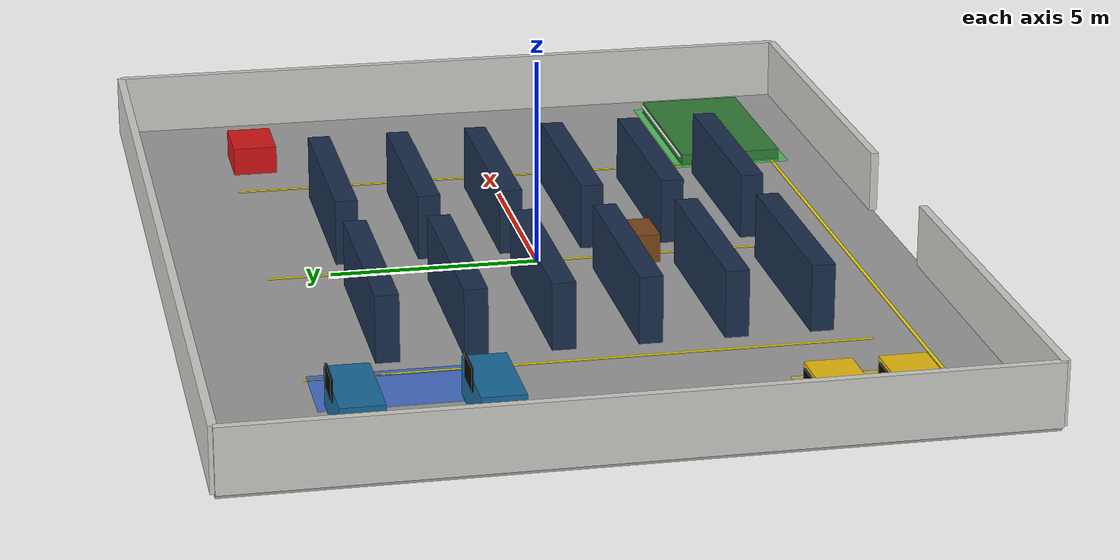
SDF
<?xml version="1.0" ?>
<sdf version="1.9">
  <world name="tugbot_style_ai_warehouse">

    <!-- Gazebo Sim systems -->
    <plugin filename="gz-sim-physics-system" name="gz::sim::systems::Physics"/>
    <plugin filename="gz-sim-user-commands-system" name="gz::sim::systems::UserCommands"/>
    <plugin filename="gz-sim-scene-broadcaster-system" name="gz::sim::systems::SceneBroadcaster"/>
    <plugin filename="gz-sim-sensors-system" name="gz::sim::systems::Sensors">
      <render_engine>ogre2</render_engine>
    </plugin>

    <!-- Web visualization websocket server for GzWeb / Gazebo web visualization -->
    <plugin filename="gz-sim-websocket-server-system" name="gz::sim::systems::WebsocketServer">
      <port>9002</port>
      <publication_hz>30</publication_hz>
      <max_connections>-1</max_connections>
    </plugin>

    <gravity>0 0 -9.81</gravity>
    <magnetic_field>6.0e-6 2.3e-5 -4.2e-5</magnetic_field>
    <atmosphere type="adiabatic"/>

    <scene>
      <ambient>0.6 0.6 0.6 1</ambient>
      <background>0.78 0.82 0.86 1</background>
      <shadows>true</shadows>
      <grid>true</grid>
    </scene>

    <light name="warehouse_area_light_1" type="directional">
      <pose>-8 -8 10 0 0.7 0.8</pose>
      <diffuse>0.9 0.9 0.9 1</diffuse>
      <specular>0.2 0.2 0.2 1</specular>
      <direction>0.5 0.5 -1</direction>
    </light>

    <!-- FLOOR -->
    <model name="warehouse_floor">
      <static>true</static>
      <pose>0 0 -0.05 0 0 0</pose>
      <link name="floor_link">
        <collision name="collision">
          <geometry><box><size>24 18 0.1</size></box></geometry>
        </collision>
        <visual name="visual">
          <geometry><box><size>24 18 0.1</size></box></geometry>
          <material>
            <ambient>0.55 0.55 0.55 1</ambient>
            <diffuse>0.62 0.62 0.62 1</diffuse>
          </material>
        </visual>
      </link>
    </model>

    <!-- OUTER WALLS -->
    <model name="outer_walls">
      <static>true</static>
      <link name="walls">
        <!-- north wall -->
        <collision name="north_collision"><pose>0 9 0.75 0 0 0</pose><geometry><box><size>24 0.2 1.5</size></box></geometry></collision>
        <visual name="north_visual"><pose>0 9 0.75 0 0 0</pose><geometry><box><size>24 0.2 1.5</size></box></geometry><material><diffuse>0.82 0.82 0.80 1</diffuse></material></visual>
        <!-- south wall with entrance gap simulated by 2 segments -->
        <collision name="south_left_collision"><pose>-7  -9 0.75 0 0 0</pose><geometry><box><size>10 0.2 1.5</size></box></geometry></collision>
        <visual name="south_left_visual"><pose>-7 -9 0.75 0 0 0</pose><geometry><box><size>10 0.2 1.5</size></box></geometry><material><diffuse>0.82 0.82 0.80 1</diffuse></material></visual>
        <collision name="south_right_collision"><pose>7 -9 0.75 0 0 0</pose><geometry><box><size>10 0.2 1.5</size></box></geometry></collision>
        <visual name="south_right_visual"><pose>7 -9 0.75 0 0 0</pose><geometry><box><size>10 0.2 1.5</size></box></geometry><material><diffuse>0.82 0.82 0.80 1</diffuse></material></visual>
        <!-- west/east walls -->
        <collision name="west_collision"><pose>-12 0 0.75 0 0 0</pose><geometry><box><size>0.2 18 1.5</size></box></geometry></collision>
        <visual name="west_visual"><pose>-12 0 0.75 0 0 0</pose><geometry><box><size>0.2 18 1.5</size></box></geometry><material><diffuse>0.82 0.82 0.80 1</diffuse></material></visual>
        <collision name="east_collision"><pose>12 0 0.75 0 0 0</pose><geometry><box><size>0.2 18 1.5</size></box></geometry></collision>
        <visual name="east_visual"><pose>12 0 0.75 0 0 0</pose><geometry><box><size>0.2 18 1.5</size></box></geometry><material><diffuse>0.82 0.82 0.80 1</diffuse></material></visual>
      </link>
    </model>

    <!-- STORAGE SHELVES: narrow aisles for smart routing/congestion -->

    <model name="storage_shelf_A1">
      <static>true</static>
      <pose>-3.2 -5.5 0.80 0 0 0</pose>
      <link name="link">
        <collision name="collision"><geometry><box><size>5.0 0.55 1.6</size></box></geometry></collision>
        <visual name="rack_frame"><geometry><box><size>5.0 0.55 1.6</size></box></geometry><material><diffuse>0.10 0.18 0.30 1</diffuse></material></visual>
        <visual name="front_label"><pose>0 -0.29000000000000004 0.15 0 0 0</pose><geometry><box><size>4.6000000000000005 0.03 0.18</size></box></geometry><material><diffuse>0.95 0.70 0.18 1</diffuse></material></visual>
        <visual name="top_box_1"><pose>-1.4 0 0.55 0 0 0</pose><geometry><box><size>0.65 0.45 0.45</size></box></geometry><material><diffuse>0.55 0.32 0.16 1</diffuse></material></visual>
        <visual name="top_box_2"><pose>0.2 0 0.15 0 0 0</pose><geometry><box><size>0.8 0.45 0.35</size></box></geometry><material><diffuse>0.70 0.45 0.22 1</diffuse></material></visual>
        <visual name="top_box_3"><pose>1.6 0 -0.35 0 0 0</pose><geometry><box><size>0.75 0.45 0.4</size></box></geometry><material><diffuse>0.48 0.28 0.12 1</diffuse></material></visual>
      </link>
    </model>

    <model name="storage_shelf_B1">
      <static>true</static>
      <pose>3.2 -5.5 0.80 0 0 0</pose>
      <link name="link">
        <collision name="collision"><geometry><box><size>5.0 0.55 1.6</size></box></geometry></collision>
        <visual name="rack_frame"><geometry><box><size>5.0 0.55 1.6</size></box></geometry><material><diffuse>0.10 0.18 0.30 1</diffuse></material></visual>
        <visual name="front_label"><pose>0 -0.29000000000000004 0.15 0 0 0</pose><geometry><box><size>4.6000000000000005 0.03 0.18</size></box></geometry><material><diffuse>0.95 0.70 0.18 1</diffuse></material></visual>
        <visual name="top_box_1"><pose>-1.4 0 0.55 0 0 0</pose><geometry><box><size>0.65 0.45 0.45</size></box></geometry><material><diffuse>0.55 0.32 0.16 1</diffuse></material></visual>
        <visual name="top_box_2"><pose>0.2 0 0.15 0 0 0</pose><geometry><box><size>0.8 0.45 0.35</size></box></geometry><material><diffuse>0.70 0.45 0.22 1</diffuse></material></visual>
        <visual name="top_box_3"><pose>1.6 0 -0.35 0 0 0</pose><geometry><box><size>0.75 0.45 0.4</size></box></geometry><material><diffuse>0.48 0.28 0.12 1</diffuse></material></visual>
      </link>
    </model>

    <model name="storage_shelf_A2">
      <static>true</static>
      <pose>-3.2 -3.5 0.80 0 0 0</pose>
      <link name="link">
        <collision name="collision"><geometry><box><size>5.0 0.55 1.6</size></box></geometry></collision>
        <visual name="rack_frame"><geometry><box><size>5.0 0.55 1.6</size></box></geometry><material><diffuse>0.10 0.18 0.30 1</diffuse></material></visual>
        <visual name="front_label"><pose>0 -0.29000000000000004 0.15 0 0 0</pose><geometry><box><size>4.6000000000000005 0.03 0.18</size></box></geometry><material><diffuse>0.95 0.70 0.18 1</diffuse></material></visual>
        <visual name="top_box_1"><pose>-1.4 0 0.55 0 0 0</pose><geometry><box><size>0.65 0.45 0.45</size></box></geometry><material><diffuse>0.55 0.32 0.16 1</diffuse></material></visual>
        <visual name="top_box_2"><pose>0.2 0 0.15 0 0 0</pose><geometry><box><size>0.8 0.45 0.35</size></box></geometry><material><diffuse>0.70 0.45 0.22 1</diffuse></material></visual>
        <visual name="top_box_3"><pose>1.6 0 -0.35 0 0 0</pose><geometry><box><size>0.75 0.45 0.4</size></box></geometry><material><diffuse>0.48 0.28 0.12 1</diffuse></material></visual>
      </link>
    </model>

    <model name="storage_shelf_B2">
      <static>true</static>
      <pose>3.2 -3.5 0.80 0 0 0</pose>
      <link name="link">
        <collision name="collision"><geometry><box><size>5.0 0.55 1.6</size></box></geometry></collision>
        <visual name="rack_frame"><geometry><box><size>5.0 0.55 1.6</size></box></geometry><material><diffuse>0.10 0.18 0.30 1</diffuse></material></visual>
        <visual name="front_label"><pose>0 -0.29000000000000004 0.15 0 0 0</pose><geometry><box><size>4.6000000000000005 0.03 0.18</size></box></geometry><material><diffuse>0.95 0.70 0.18 1</diffuse></material></visual>
        <visual name="top_box_1"><pose>-1.4 0 0.55 0 0 0</pose><geometry><box><size>0.65 0.45 0.45</size></box></geometry><material><diffuse>0.55 0.32 0.16 1</diffuse></material></visual>
        <visual name="top_box_2"><pose>0.2 0 0.15 0 0 0</pose><geometry><box><size>0.8 0.45 0.35</size></box></geometry><material><diffuse>0.70 0.45 0.22 1</diffuse></material></visual>
        <visual name="top_box_3"><pose>1.6 0 -0.35 0 0 0</pose><geometry><box><size>0.75 0.45 0.4</size></box></geometry><material><diffuse>0.48 0.28 0.12 1</diffuse></material></visual>
      </link>
    </model>

    <model name="storage_shelf_A3">
      <static>true</static>
      <pose>-3.2 -1.5 0.80 0 0 0</pose>
      <link name="link">
        <collision name="collision"><geometry><box><size>5.0 0.55 1.6</size></box></geometry></collision>
        <visual name="rack_frame"><geometry><box><size>5.0 0.55 1.6</size></box></geometry><material><diffuse>0.10 0.18 0.30 1</diffuse></material></visual>
        <visual name="front_label"><pose>0 -0.29000000000000004 0.15 0 0 0</pose><geometry><box><size>4.6000000000000005 0.03 0.18</size></box></geometry><material><diffuse>0.95 0.70 0.18 1</diffuse></material></visual>
        <visual name="top_box_1"><pose>-1.4 0 0.55 0 0 0</pose><geometry><box><size>0.65 0.45 0.45</size></box></geometry><material><diffuse>0.55 0.32 0.16 1</diffuse></material></visual>
        <visual name="top_box_2"><pose>0.2 0 0.15 0 0 0</pose><geometry><box><size>0.8 0.45 0.35</size></box></geometry><material><diffuse>0.70 0.45 0.22 1</diffuse></material></visual>
        <visual name="top_box_3"><pose>1.6 0 -0.35 0 0 0</pose><geometry><box><size>0.75 0.45 0.4</size></box></geometry><material><diffuse>0.48 0.28 0.12 1</diffuse></material></visual>
      </link>
    </model>

    <model name="storage_shelf_B3">
      <static>true</static>
      <pose>3.2 -1.5 0.80 0 0 0</pose>
      <link name="link">
        <collision name="collision"><geometry><box><size>5.0 0.55 1.6</size></box></geometry></collision>
        <visual name="rack_frame"><geometry><box><size>5.0 0.55 1.6</size></box></geometry><material><diffuse>0.10 0.18 0.30 1</diffuse></material></visual>
        <visual name="front_label"><pose>0 -0.29000000000000004 0.15 0 0 0</pose><geometry><box><size>4.6000000000000005 0.03 0.18</size></box></geometry><material><diffuse>0.95 0.70 0.18 1</diffuse></material></visual>
        <visual name="top_box_1"><pose>-1.4 0 0.55 0 0 0</pose><geometry><box><size>0.65 0.45 0.45</size></box></geometry><material><diffuse>0.55 0.32 0.16 1</diffuse></material></visual>
        <visual name="top_box_2"><pose>0.2 0 0.15 0 0 0</pose><geometry><box><size>0.8 0.45 0.35</size></box></geometry><material><diffuse>0.70 0.45 0.22 1</diffuse></material></visual>
        <visual name="top_box_3"><pose>1.6 0 -0.35 0 0 0</pose><geometry><box><size>0.75 0.45 0.4</size></box></geometry><material><diffuse>0.48 0.28 0.12 1</diffuse></material></visual>
      </link>
    </model>

    <model name="storage_shelf_A4">
      <static>true</static>
      <pose>-3.2 0.5 0.80 0 0 0</pose>
      <link name="link">
        <collision name="collision"><geometry><box><size>5.0 0.55 1.6</size></box></geometry></collision>
        <visual name="rack_frame"><geometry><box><size>5.0 0.55 1.6</size></box></geometry><material><diffuse>0.10 0.18 0.30 1</diffuse></material></visual>
        <visual name="front_label"><pose>0 -0.29000000000000004 0.15 0 0 0</pose><geometry><box><size>4.6000000000000005 0.03 0.18</size></box></geometry><material><diffuse>0.95 0.70 0.18 1</diffuse></material></visual>
        <visual name="top_box_1"><pose>-1.4 0 0.55 0 0 0</pose><geometry><box><size>0.65 0.45 0.45</size></box></geometry><material><diffuse>0.55 0.32 0.16 1</diffuse></material></visual>
        <visual name="top_box_2"><pose>0.2 0 0.15 0 0 0</pose><geometry><box><size>0.8 0.45 0.35</size></box></geometry><material><diffuse>0.70 0.45 0.22 1</diffuse></material></visual>
        <visual name="top_box_3"><pose>1.6 0 -0.35 0 0 0</pose><geometry><box><size>0.75 0.45 0.4</size></box></geometry><material><diffuse>0.48 0.28 0.12 1</diffuse></material></visual>
      </link>
    </model>

    <model name="storage_shelf_B4">
      <static>true</static>
      <pose>3.2 0.5 0.80 0 0 0</pose>
      <link name="link">
        <collision name="collision"><geometry><box><size>5.0 0.55 1.6</size></box></geometry></collision>
        <visual name="rack_frame"><geometry><box><size>5.0 0.55 1.6</size></box></geometry><material><diffuse>0.10 0.18 0.30 1</diffuse></material></visual>
        <visual name="front_label"><pose>0 -0.29000000000000004 0.15 0 0 0</pose><geometry><box><size>4.6000000000000005 0.03 0.18</size></box></geometry><material><diffuse>0.95 0.70 0.18 1</diffuse></material></visual>
        <visual name="top_box_1"><pose>-1.4 0 0.55 0 0 0</pose><geometry><box><size>0.65 0.45 0.45</size></box></geometry><material><diffuse>0.55 0.32 0.16 1</diffuse></material></visual>
        <visual name="top_box_2"><pose>0.2 0 0.15 0 0 0</pose><geometry><box><size>0.8 0.45 0.35</size></box></geometry><material><diffuse>0.70 0.45 0.22 1</diffuse></material></visual>
        <visual name="top_box_3"><pose>1.6 0 -0.35 0 0 0</pose><geometry><box><size>0.75 0.45 0.4</size></box></geometry><material><diffuse>0.48 0.28 0.12 1</diffuse></material></visual>
      </link>
    </model>

    <model name="storage_shelf_A5">
      <static>true</static>
      <pose>-3.2 2.5 0.80 0 0 0</pose>
      <link name="link">
        <collision name="collision"><geometry><box><size>5.0 0.55 1.6</size></box></geometry></collision>
        <visual name="rack_frame"><geometry><box><size>5.0 0.55 1.6</size></box></geometry><material><diffuse>0.10 0.18 0.30 1</diffuse></material></visual>
        <visual name="front_label"><pose>0 -0.29000000000000004 0.15 0 0 0</pose><geometry><box><size>4.6000000000000005 0.03 0.18</size></box></geometry><material><diffuse>0.95 0.70 0.18 1</diffuse></material></visual>
        <visual name="top_box_1"><pose>-1.4 0 0.55 0 0 0</pose><geometry><box><size>0.65 0.45 0.45</size></box></geometry><material><diffuse>0.55 0.32 0.16 1</diffuse></material></visual>
        <visual name="top_box_2"><pose>0.2 0 0.15 0 0 0</pose><geometry><box><size>0.8 0.45 0.35</size></box></geometry><material><diffuse>0.70 0.45 0.22 1</diffuse></material></visual>
        <visual name="top_box_3"><pose>1.6 0 -0.35 0 0 0</pose><geometry><box><size>0.75 0.45 0.4</size></box></geometry><material><diffuse>0.48 0.28 0.12 1</diffuse></material></visual>
      </link>
    </model>

    <model name="storage_shelf_B5">
      <static>true</static>
      <pose>3.2 2.5 0.80 0 0 0</pose>
      <link name="link">
        <collision name="collision"><geometry><box><size>5.0 0.55 1.6</size></box></geometry></collision>
        <visual name="rack_frame"><geometry><box><size>5.0 0.55 1.6</size></box></geometry><material><diffuse>0.10 0.18 0.30 1</diffuse></material></visual>
        <visual name="front_label"><pose>0 -0.29000000000000004 0.15 0 0 0</pose><geometry><box><size>4.6000000000000005 0.03 0.18</size></box></geometry><material><diffuse>0.95 0.70 0.18 1</diffuse></material></visual>
        <visual name="top_box_1"><pose>-1.4 0 0.55 0 0 0</pose><geometry><box><size>0.65 0.45 0.45</size></box></geometry><material><diffuse>0.55 0.32 0.16 1</diffuse></material></visual>
        <visual name="top_box_2"><pose>0.2 0 0.15 0 0 0</pose><geometry><box><size>0.8 0.45 0.35</size></box></geometry><material><diffuse>0.70 0.45 0.22 1</diffuse></material></visual>
        <visual name="top_box_3"><pose>1.6 0 -0.35 0 0 0</pose><geometry><box><size>0.75 0.45 0.4</size></box></geometry><material><diffuse>0.48 0.28 0.12 1</diffuse></material></visual>
      </link>
    </model>

    <model name="storage_shelf_A6">
      <static>true</static>
      <pose>-3.2 4.5 0.80 0 0 0</pose>
      <link name="link">
        <collision name="collision"><geometry><box><size>5.0 0.55 1.6</size></box></geometry></collision>
        <visual name="rack_frame"><geometry><box><size>5.0 0.55 1.6</size></box></geometry><material><diffuse>0.10 0.18 0.30 1</diffuse></material></visual>
        <visual name="front_label"><pose>0 -0.29000000000000004 0.15 0 0 0</pose><geometry><box><size>4.6000000000000005 0.03 0.18</size></box></geometry><material><diffuse>0.95 0.70 0.18 1</diffuse></material></visual>
        <visual name="top_box_1"><pose>-1.4 0 0.55 0 0 0</pose><geometry><box><size>0.65 0.45 0.45</size></box></geometry><material><diffuse>0.55 0.32 0.16 1</diffuse></material></visual>
        <visual name="top_box_2"><pose>0.2 0 0.15 0 0 0</pose><geometry><box><size>0.8 0.45 0.35</size></box></geometry><material><diffuse>0.70 0.45 0.22 1</diffuse></material></visual>
        <visual name="top_box_3"><pose>1.6 0 -0.35 0 0 0</pose><geometry><box><size>0.75 0.45 0.4</size></box></geometry><material><diffuse>0.48 0.28 0.12 1</diffuse></material></visual>
      </link>
    </model>

    <model name="storage_shelf_B6">
      <static>true</static>
      <pose>3.2 4.5 0.80 0 0 0</pose>
      <link name="link">
        <collision name="collision"><geometry><box><size>5.0 0.55 1.6</size></box></geometry></collision>
        <visual name="rack_frame"><geometry><box><size>5.0 0.55 1.6</size></box></geometry><material><diffuse>0.10 0.18 0.30 1</diffuse></material></visual>
        <visual name="front_label"><pose>0 -0.29000000000000004 0.15 0 0 0</pose><geometry><box><size>4.6000000000000005 0.03 0.18</size></box></geometry><material><diffuse>0.95 0.70 0.18 1</diffuse></material></visual>
        <visual name="top_box_1"><pose>-1.4 0 0.55 0 0 0</pose><geometry><box><size>0.65 0.45 0.45</size></box></geometry><material><diffuse>0.55 0.32 0.16 1</diffuse></material></visual>
        <visual name="top_box_2"><pose>0.2 0 0.15 0 0 0</pose><geometry><box><size>0.8 0.45 0.35</size></box></geometry><material><diffuse>0.70 0.45 0.22 1</diffuse></material></visual>
        <visual name="top_box_3"><pose>1.6 0 -0.35 0 0 0</pose><geometry><box><size>0.75 0.45 0.4</size></box></geometry><material><diffuse>0.48 0.28 0.12 1</diffuse></material></visual>
      </link>
    </model>

    <!-- PICKING / PACKING STATIONS -->
    <model name="picking_station_1">
      <static>true</static>
      <pose>-9.0 5.7 0.45 0 0 0</pose>
      <link name="link">
        <collision name="table_collision"><geometry><box><size>2.4 1.0 0.9</size></box></geometry></collision>
        <visual name="table_visual"><geometry><box><size>2.4 1.0 0.9</size></box></geometry><material><diffuse>0.10 0.42 0.62 1</diffuse></material></visual>
        <visual name="screen"><pose>0 0.55 0.55 0 0 0</pose><geometry><box><size>0.9 0.05 0.55</size></box></geometry><material><diffuse>0.02 0.02 0.02 1</diffuse></material></visual>
      </link>
    </model>

    <model name="picking_station_2">
      <static>true</static>
      <pose>-9.0 2.7 0.45 0 0 0</pose>
      <link name="link">
        <collision name="table_collision"><geometry><box><size>2.4 1.0 0.9</size></box></geometry></collision>
        <visual name="table_visual"><geometry><box><size>2.4 1.0 0.9</size></box></geometry><material><diffuse>0.10 0.42 0.62 1</diffuse></material></visual>
        <visual name="screen"><pose>0 0.55 0.55 0 0 0</pose><geometry><box><size>0.9 0.05 0.55</size></box></geometry><material><diffuse>0.02 0.02 0.02 1</diffuse></material></visual>
      </link>
    </model>

    <!-- DISPATCH / OUTBOUND AREA -->
    <model name="dispatch_zone">
      <static>true</static>
      <pose>8.6 -6.4 0.15 0 0 0</pose>
      <link name="link">
        <collision name="collision"><geometry><box><size>4.6 2.6 0.3</size></box></geometry></collision>
        <visual name="platform"><geometry><box><size>4.6 2.6 0.3</size></box></geometry><material><diffuse>0.20 0.50 0.22 1</diffuse></material></visual>
        <visual name="dock_line"><pose>0 1.34 0.08 0 0 0</pose><geometry><box><size>4.4 0.06 0.04</size></box></geometry><material><diffuse>1 1 1 1</diffuse></material></visual>
      </link>
    </model>

    <!-- CHARGING AREA -->
    <model name="charging_dock_1">
      <static>true</static>
      <pose>-9.3 -6.5 0.25 0 0 0</pose>
      <link name="link">
        <collision name="collision"><geometry><box><size>1.4 1.1 0.5</size></box></geometry></collision>
        <visual name="visual"><geometry><box><size>1.4 1.1 0.5</size></box></geometry><material><diffuse>0.95 0.75 0.05 1</diffuse></material></visual>
        <visual name="black_face"><pose>0 0.57 0 0 0 0</pose><geometry><box><size>1.1 0.04 0.32</size></box></geometry><material><diffuse>0.02 0.02 0.02 1</diffuse></material></visual>
      </link>
    </model>

    <model name="charging_dock_2">
      <static>true</static>
      <pose>-9.3 -4.8 0.25 0 0 0</pose>
      <link name="link">
        <collision name="collision"><geometry><box><size>1.4 1.1 0.5</size></box></geometry></collision>
        <visual name="visual"><geometry><box><size>1.4 1.1 0.5</size></box></geometry><material><diffuse>0.95 0.75 0.05 1</diffuse></material></visual>
        <visual name="black_face"><pose>0 0.57 0 0 0 0</pose><geometry><box><size>1.1 0.04 0.32</size></box></geometry><material><diffuse>0.02 0.02 0.02 1</diffuse></material></visual>
      </link>
    </model>

    <!-- FLOOR MARKINGS: main lane + cross aisles -->
    <model name="floor_markings">
      <static>true</static>
      <pose>0 0 0.012 0 0 0</pose>
      <link name="link">
        <visual name="main_lane"><pose>0 -7.5 0 0 0 0</pose><geometry><box><size>21.0 0.08 0.02</size></box></geometry><material><diffuse>1 0.9 0.05 1</diffuse></material></visual>
        <visual name="cross_lane_1"><pose>-6.4 0 0 0 0 0</pose><geometry><box><size>0.08 13.0 0.02</size></box></geometry><material><diffuse>1 0.9 0.05 1</diffuse></material></visual>
        <visual name="cross_lane_2"><pose>0 0 0 0 0 0</pose><geometry><box><size>0.08 13.0 0.02</size></box></geometry><material><diffuse>1 0.9 0.05 1</diffuse></material></visual>
        <visual name="cross_lane_3"><pose>6.4 0 0 0 0 0</pose><geometry><box><size>0.08 13.0 0.02</size></box></geometry><material><diffuse>1 0.9 0.05 1</diffuse></material></visual>
        <visual name="pickup_zone"><pose>-7.2 4.2 0 0 0 0</pose><geometry><box><size>2.0 4.4 0.02</size></box></geometry><material><diffuse>0.05 0.35 1 0.55</diffuse></material></visual>
        <visual name="dispatch_zone_marker"><pose>8.6 -6.4 0.02 0 0 0</pose><geometry><box><size>5.0 3.0 0.02</size></box></geometry><material><diffuse>0.05 1 0.18 0.45</diffuse></material></visual>
        <visual name="charge_zone_marker"><pose>-9.3 -5.65 0.02 0 0 0</pose><geometry><box><size>2.0 3.2 0.02</size></box></geometry><material><diffuse>1 0.85 0.05 0.45</diffuse></material></visual>
      </link>
    </model>

    <!-- OBSTACLES / PALLETS to force rerouting -->
    <model name="temporary_pallet_obstacle">
      <static>true</static>
      <pose>0 -2.5 0.35 0 0 0</pose>
      <link name="link">
        <collision name="collision"><geometry><box><size>1.2 0.8 0.7</size></box></geometry></collision>
        <visual name="visual"><geometry><box><size>1.2 0.8 0.7</size></box></geometry><material><diffuse>0.50 0.28 0.10 1</diffuse></material></visual>
      </link>
    </model>

    <model name="priority_order_bin">
      <static>true</static>
      <pose>8.6 5.9 0.35 0 0 0</pose>
      <link name="link">
        <collision name="collision"><geometry><box><size>1.6 1.1 0.7</size></box></geometry></collision>
        <visual name="visual"><geometry><box><size>1.6 1.1 0.7</size></box></geometry><material><diffuse>0.85 0.08 0.08 1</diffuse></material></visual>
      </link>
    </model>

  </world>
</sdf>
